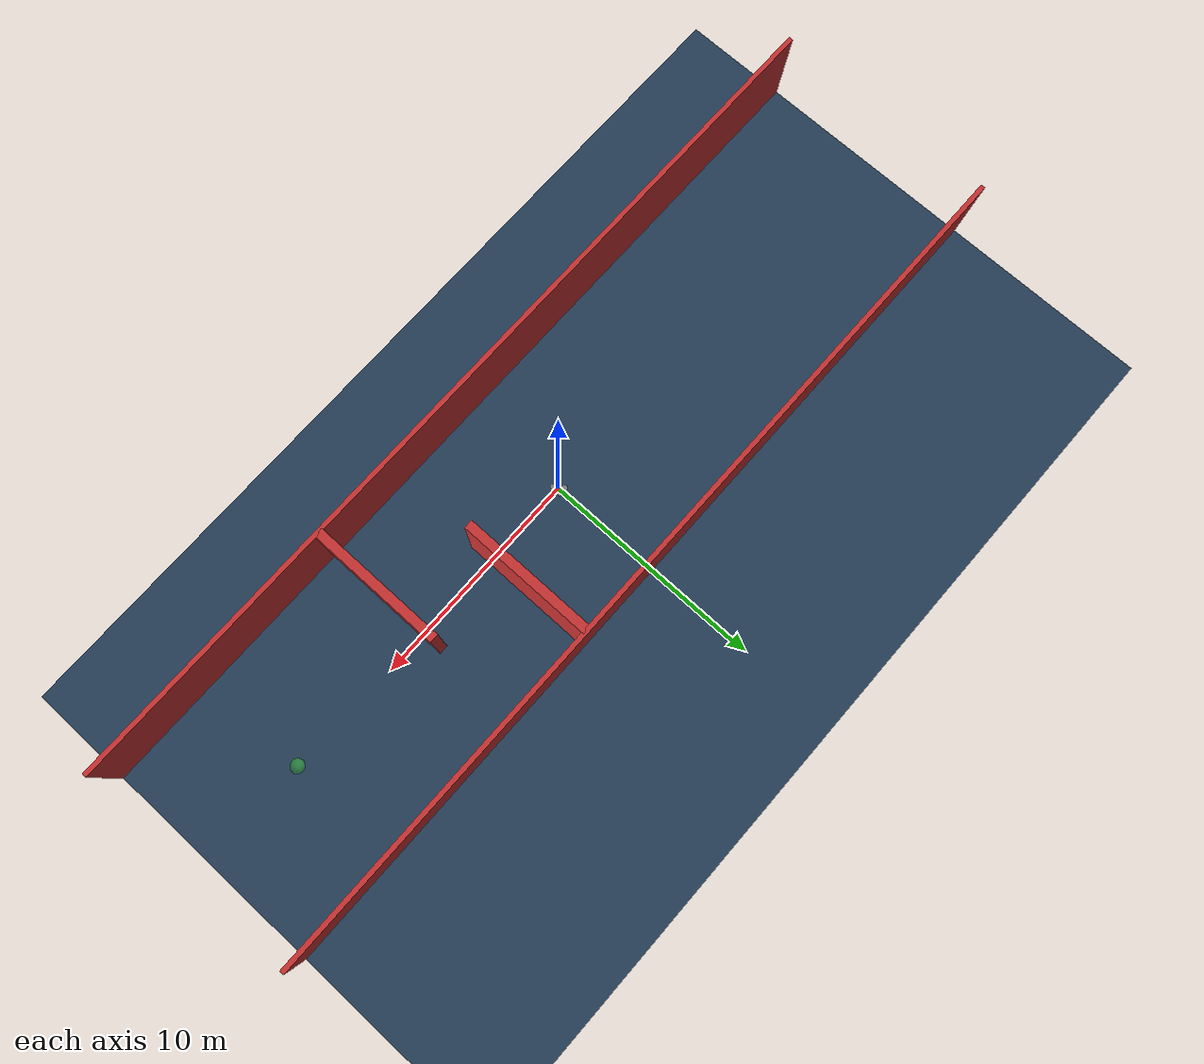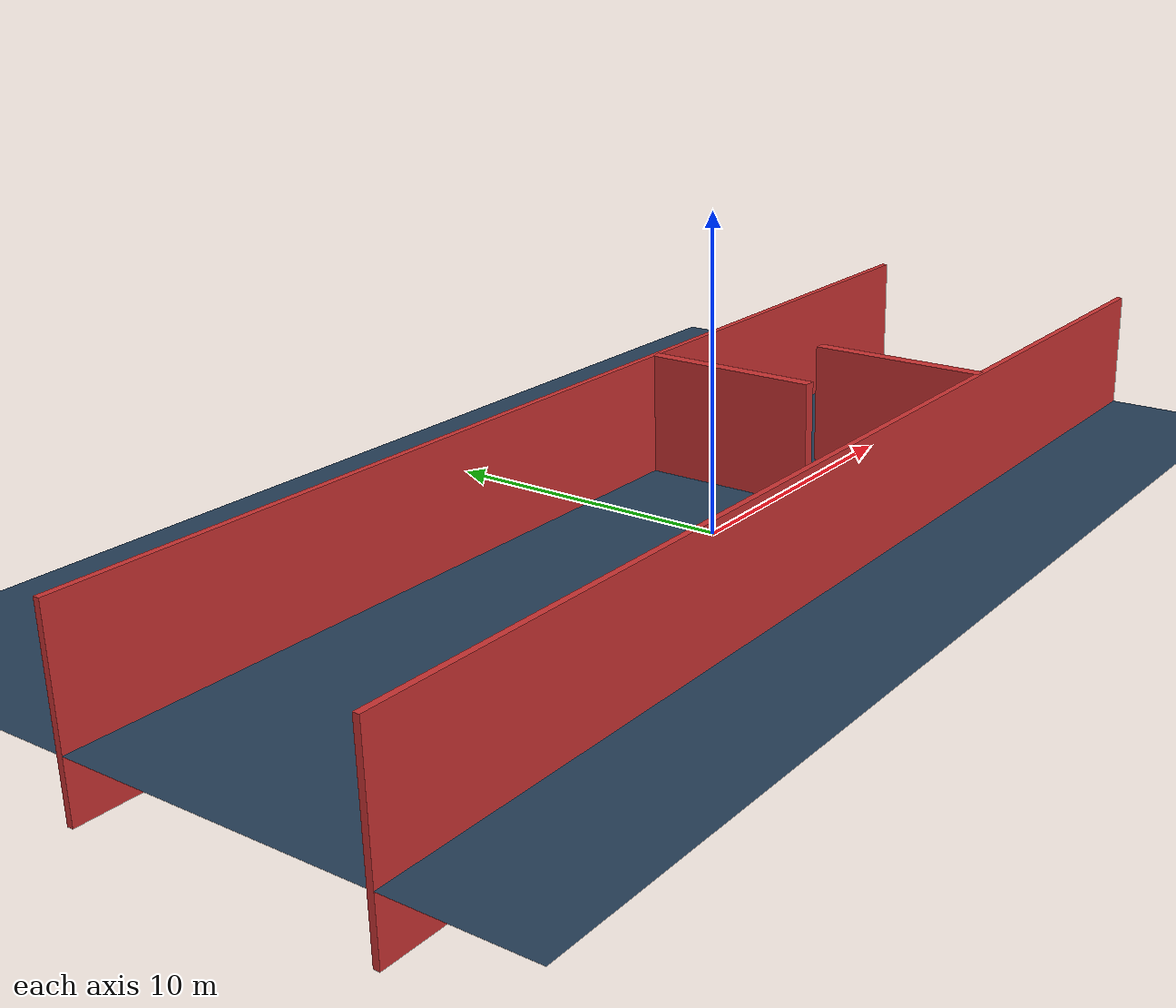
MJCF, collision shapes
<mujoco model="Skydio X2 Arena">
  <include file="x2.xml"/>
  <statistic center="0 0 0.1" extent="10" meansize=".05"/>
  <visual><headlight diffuse="0.6 0.6 0.6" ambient="0.3 0.3 0.3"/></visual>
  <asset>
    <texture type="2d" name="ground" builtin="checker" rgb1="0.2 0.3 0.4" rgb2="0.1 0.2 0.3" width="300" height="300"/>
    <material name="ground" texture="ground" texrepeat="5 5"/>
    <material name="wall_mat" rgba="0.8 0.2 0.2 1"/>
    <material name="goal_mat" rgba="0.2 0.8 0.2 0.5"/>
  </asset>

  <worldbody>
    <light pos="0 0 5" dir="0 0 -1" directional="true"/>
    <geom name="floor" size="20 20 0.1" type="plane" material="ground"/>

    <!-- Boundary Walls (Prevent Cheating) -->
    <geom name="wall_left" type="box" size="20 0.1 3" pos="0 5 1" material="wall_mat"/>
    <geom name="wall_right" type="box" size="20 0.1 3" pos="0 -5 1" material="wall_mat"/>

    <!-- Obstacles (The Walls you must go through) -->
    <geom name="obs1" type="box" size="0.2 3 3" pos="4 2 1" material="wall_mat"/>
    <geom name="obs2" type="box" size="0.2 3 3" pos="8 -2 1" material="wall_mat"/>

    <!-- Point B (Goal Visualization) -->
    <site name="goal" pos="15 0 1" size="0.3" material="goal_mat"/>
  </worldbody>
</mujoco>

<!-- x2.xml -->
<mujoco model="Skydio X2">
  <compiler autolimits="true" assetdir="assets"/>

  <option timestep="0.001" density="1.225" viscosity="1.8e-5"/>

  <default>
    <default class="x2">
      <geom mass="0"/>
      <motor ctrlrange="0 13"/>
      <mesh scale="0.01 0.01 0.01"/>
      <default class="visual">
        <geom group="2" type="mesh" contype="0" conaffinity="0"/>
      </default>
      <default class="collision">
        <geom group="3" type="box"/>
        <default class="rotor">
          <geom type="ellipsoid" size=".13 .13 .01"/>
        </default>
      </default>
      <site group="5"/>
    </default>
  </default>

  <asset>
    <texture type="2d" file="X2_lowpoly_texture_SpinningProps_1024.png"/>
    <material name="phong3SG" texture="X2_lowpoly_texture_SpinningProps_1024"/>
    <material name="invisible" rgba="0 0 0 0"/>

    <mesh class="x2" file="X2_lowpoly.obj"/>
  </asset>

  <worldbody>
    <light name="spotlight" mode="targetbodycom" target="x2" pos="0 -1 2"/>
    <body name="x2" euler="0 0 180" pos="0 0 0.1" childclass="x2">
      <freejoint/>
      <camera name="track" pos="-1 0 .5" xyaxes="0 -1 0 1 0 2" mode="trackcom"/>
      <site name="imu" pos="0 0 .02"/>
      <geom material="phong3SG" mesh="X2_lowpoly" class="visual" quat="0 0 1 1"/>
      <geom class="collision" size=".06 .027 .02" pos=".04 0 .02"/>
      <geom class="collision" size=".06 .027 .02" pos=".04 0 .06"/>
      <geom class="collision" size=".05 .027 .02" pos="-.07 0 .065"/>
      <geom class="collision" size=".023 .017 .01" pos="-.137 .008 .065" quat="1 0 0 1"/>
      <geom name="rotor1" class="rotor" pos="-.14 -.18 .05" mass=".25"/>
      <geom name="rotor2" class="rotor" pos="-.14 .18 .05" mass=".25"/>
      <geom name="rotor3" class="rotor" pos=".14 .18 .08" mass=".25"/>
      <geom name="rotor4" class="rotor" pos=".14 -.18 .08" mass=".25"/>
      <geom size=".16 .04 .02" pos="0 0 0.02" type="ellipsoid" mass=".325" class="visual" material="invisible"/>
      <site name="thrust1" pos="-.14 -.18 .05"/>
      <site name="thrust2" pos="-.14 .18 .05"/>
      <site name="thrust3" pos=".14 .18 .08"/>
      <site name="thrust4" pos=".14 -.18 .08"/>
      <!-- THÊM CÁC SITE CHO LIDAR Ở ĐÂY -->
      <!-- Chúng ta quay trục Z của site để nó nhìn ngang (thay vì nhìn lên) -->
      <site name="s_n"  pos="0 0 .02" euler="0 -90 0"/>
      <site name="s_ne" pos="0 0 .02" euler="0 -90 -45"/>
      <site name="s_e"  pos="0 0 .02" euler="0 -90 -90"/>
      <site name="s_se" pos="0 0 .02" euler="0 -90 -135"/>
      <site name="s_s"  pos="0 0 .02" euler="0 -90 -180"/>
      <site name="s_sw" pos="0 0 .02" euler="0 -90 135"/>
      <site name="s_w"  pos="0 0 .02" euler="0 -90 90"/>
      <site name="s_nw" pos="0 0 .02" euler="0 -90 45"/>
    </body>
  </worldbody>

  <actuator>
    <motor class="x2" name="thrust1" site="thrust1" gear="0 0 1 0 0 -.0201"/>
    <motor class="x2" name="thrust2" site="thrust2" gear="0 0 1 0 0  .0201"/>
    <motor class="x2" name="thrust3" site="thrust3" gear="0 0 1 0 0 -.0201"/>
    <motor class="x2" name="thrust4" site="thrust4" gear="0 0 1 0 0  .0201"/>
  </actuator>

  <sensor>
    <gyro name="body_gyro" site="imu"/>
    <accelerometer name="body_linacc" site="imu"/>
    <framequat name="body_quat" objtype="site" objname="imu"/>
    <!-- Gắn rangefinder vào các site tương ứng -->
    <rangefinder name="rf_n"  site="s_n"/>
    <rangefinder name="rf_ne" site="s_ne"/>
    <rangefinder name="rf_e"  site="s_e"/>
    <rangefinder name="rf_se" site="s_se"/>
    <rangefinder name="rf_s"  site="s_s"/>
    <rangefinder name="rf_sw" site="s_sw"/>
    <rangefinder name="rf_w"  site="s_w"/>
    <rangefinder name="rf_nw" site="s_nw"/>
  </sensor>

  <keyframe>
    <key name="hover" qpos="0 0 .3 1 0 0 0" ctrl="3.2495625 3.2495625 3.2495625 3.2495625"/>
  </keyframe>
</mujoco>
